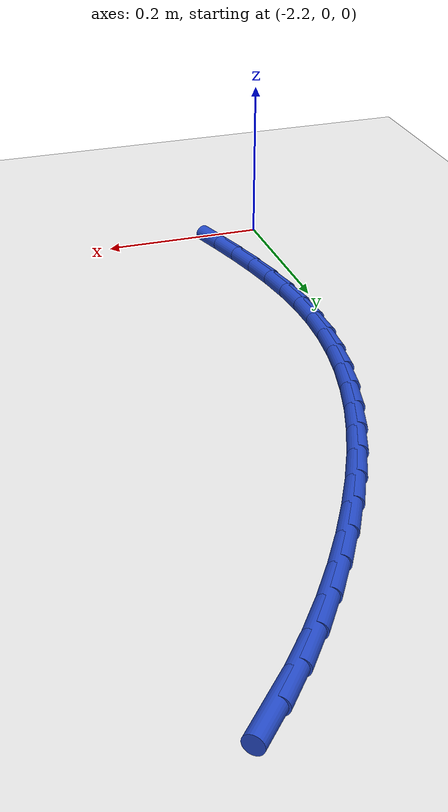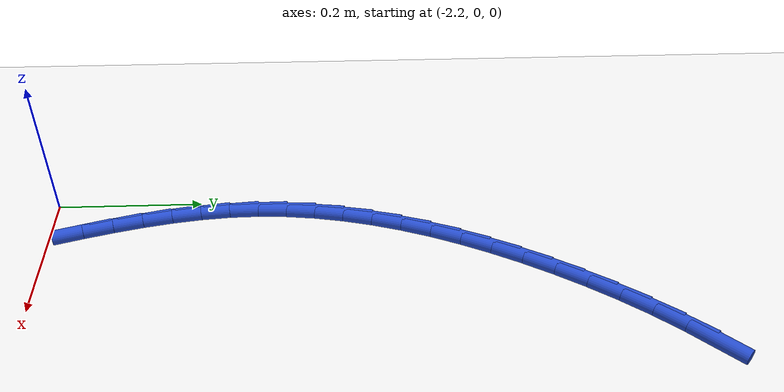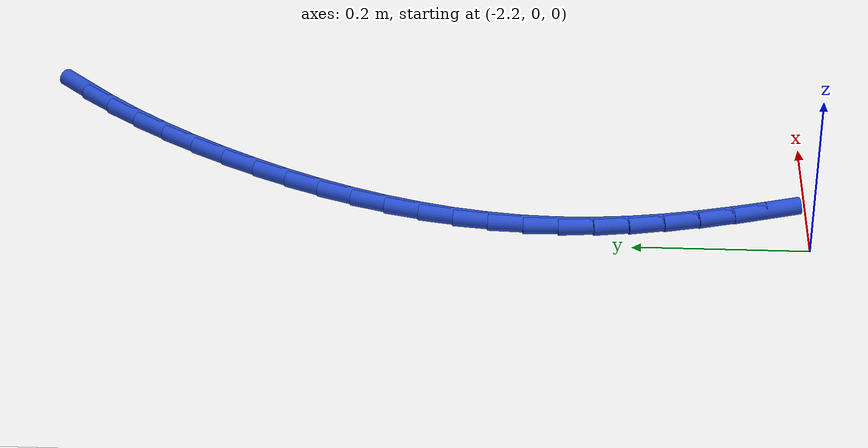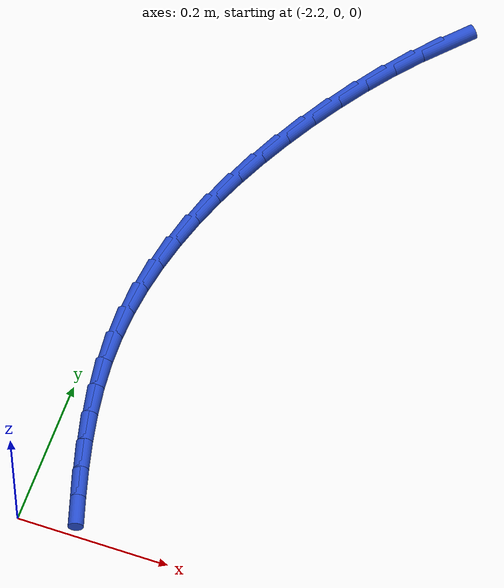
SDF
<sdf version="1.6">
 <world name="default">
  <model name="ground_plane">
   <static>1</static>
   <link name="link">
    <collision name="collision">
     <geometry><plane><normal>0 0 1</normal><size>100 100</size></plane></geometry>
     <surface><friction><ode><mu>100</mu><mu2>50</mu2></ode></friction></surface>
    </collision>
    <visual name="visual">
     <cast_shadows>0</cast_shadows>
     <geometry><plane><normal>0 0 1</normal><size>100 100</size></plane></geometry>
     <material>
      <script><uri>file://media/materials/scripts/gazebo.material</uri><name>Gazebo/WhiteGlow</name></script>
     </material>
    </visual>
   </link>
  </model>
  <model name="line">
   <link name="link_64">
    <pose>-1.914614720115715 0.8517687706379241 0.01 0 1.57 0.8266776714309082</pose>
    <collision name="collision">
     <geometry><cylinder><radius>0.01</radius><length>0.08</length></cylinder></geometry>
    </collision>
    <visual name="visual">
     <material>
      <script><name>Gazebo/Blue</name><uri>file://media/materials/scripts/gazebo.material</uri></script>
     </material>
     <geometry><cylinder><radius>0.01</radius><length>0.08</length></cylinder></geometry>
    </visual>
   </link>
   <link name="link_65">
    <pose>-1.9444672999578119 0.8193439491082191 0.01 0 1.57 0.8808925565863249</pose>
    <collision name="collision">
     <geometry><cylinder><radius>0.01</radius><length>0.08</length></cylinder></geometry>
    </collision>
    <visual name="visual">
     <material>
      <script><name>Gazebo/Blue</name><uri>file://media/materials/scripts/gazebo.material</uri></script>
     </material>
     <geometry><cylinder><radius>0.01</radius><length>0.08</length></cylinder></geometry>
    </visual>
   </link>
   <link name="link_66">
    <pose>-1.9728456533976435 0.7849532123702778 0.01 0 1.57 0.929612253341343</pose>
    <collision name="collision">
     <geometry><cylinder><radius>0.01</radius><length>0.08</length></cylinder></geometry>
    </collision>
    <visual name="visual">
     <material>
      <script><name>Gazebo/Blue</name><uri>file://media/materials/scripts/gazebo.material</uri></script>
     </material>
     <geometry><cylinder><radius>0.01</radius><length>0.08</length></cylinder></geometry>
    </visual>
   </link>
   <link name="link_67">
    <pose>-1.9996943912351357 0.7489815553349181 0.01 0 1.57 0.9738077752511692</pose>
    <collision name="collision">
     <geometry><cylinder><radius>0.01</radius><length>0.08</length></cylinder></geometry>
    </collision>
    <visual name="visual">
     <material>
      <script><name>Gazebo/Blue</name><uri>file://media/materials/scripts/gazebo.material</uri></script>
     </material>
     <geometry><cylinder><radius>0.01</radius><length>0.08</length></cylinder></geometry>
    </visual>
   </link>
   <link name="link_68">
    <pose>-2.024958124270215 0.7118139729129569 0.01 0 1.57 1.0143438582423232</pose>
    <collision name="collision">
     <geometry><cylinder><radius>0.01</radius><length>0.08</length></cylinder></geometry>
    </collision>
    <visual name="visual">
     <material>
      <script><name>Gazebo/Blue</name><uri>file://media/materials/scripts/gazebo.material</uri></script>
     </material>
     <geometry><cylinder><radius>0.01</radius><length>0.08</length></cylinder></geometry>
    </visual>
   </link>
   <link name="link_69">
    <pose>-2.0485814633028077 0.6738354600152128 0.01 0 1.57 1.0521744910434263</pose>
    <collision name="collision">
     <geometry><cylinder><radius>0.01</radius><length>0.08</length></cylinder></geometry>
    </collision>
    <visual name="visual">
     <material>
      <script><name>Gazebo/Blue</name><uri>file://media/materials/scripts/gazebo.material</uri></script>
     </material>
     <geometry><cylinder><radius>0.01</radius><length>0.08</length></cylinder></geometry>
    </visual>
   </link>
   <link name="link_70">
    <pose>-2.0705071193459297 0.6354188200036454 0.01 0 1.57 1.0906015369011544</pose>
    <collision name="collision">
     <geometry><cylinder><radius>0.01</radius><length>0.08</length></cylinder></geometry>
    </collision>
    <visual name="visual">
     <material>
      <script><name>Gazebo/Blue</name><uri>file://media/materials/scripts/gazebo.material</uri></script>
     </material>
     <geometry><cylinder><radius>0.01</radius><length>0.08</length></cylinder></geometry>
    </visual>
   </link>
   <link name="link_71">
    <pose>-2.09064855127912 0.5967491358108904 0.01 0 1.57 1.1320293997683217</pose>
    <collision name="collision">
     <geometry><cylinder><radius>0.01</radius><length>0.08</length></cylinder></geometry>
    </collision>
    <visual name="visual">
     <material>
      <script><name>Gazebo/Blue</name><uri>file://media/materials/scripts/gazebo.material</uri></script>
     </material>
     <geometry><cylinder><radius>0.01</radius><length>0.08</length></cylinder></geometry>
    </visual>
   </link>
   <link name="link_72">
    <pose>-2.1088962697177145 0.5578642239142902 0.01 0 1.57 1.1767407733456</pose>
    <collision name="collision">
     <geometry><cylinder><radius>0.01</radius><length>0.08</length></cylinder></geometry>
    </collision>
    <visual name="visual">
     <material>
      <script><name>Gazebo/Blue</name><uri>file://media/materials/scripts/gazebo.material</uri></script>
     </material>
     <geometry><cylinder><radius>0.01</radius><length>0.08</length></cylinder></geometry>
    </visual>
   </link>
   <link name="link_73">
    <pose>-2.125140169591737 0.5187979497387637 0.01 0 1.57 1.2249468748099253</pose>
    <collision name="collision">
     <geometry><cylinder><radius>0.01</radius><length>0.08</length></cylinder></geometry>
    </collision>
    <visual name="visual">
     <material>
      <script><name>Gazebo/Blue</name><uri>file://media/materials/scripts/gazebo.material</uri></script>
     </material>
     <geometry><cylinder><radius>0.01</radius><length>0.08</length></cylinder></geometry>
    </visual>
   </link>
   <link name="link_74">
    <pose>-2.1392701458312042 0.4795841787092292 0.01 0 1.57 1.2768283758326175</pose>
    <collision name="collision">
     <geometry><cylinder><radius>0.01</radius><length>0.08</length></cylinder></geometry>
    </collision>
    <visual name="visual">
     <material>
      <script><name>Gazebo/Blue</name><uri>file://media/materials/scripts/gazebo.material</uri></script>
     </material>
     <geometry><cylinder><radius>0.01</radius><length>0.08</length></cylinder></geometry>
    </visual>
   </link>
   <link name="link_75">
    <pose>-2.1511760933661352 0.44025677625060633 0.01 0 1.57 1.332515590748334</pose>
    <collision name="collision">
     <geometry><cylinder><radius>0.01</radius><length>0.08</length></cylinder></geometry>
    </collision>
    <visual name="visual">
     <material>
      <script><name>Gazebo/Blue</name><uri>file://media/materials/scripts/gazebo.material</uri></script>
     </material>
     <geometry><cylinder><radius>0.01</radius><length>0.08</length></cylinder></geometry>
    </visual>
   </link>
   <link name="link_76">
    <pose>-2.16074790712655 0.4008496077878136 0.01 0 1.57 1.3920645810216832</pose>
    <collision name="collision">
     <geometry><cylinder><radius>0.01</radius><length>0.08</length></cylinder></geometry>
    </collision>
    <visual name="visual">
     <material>
      <script><name>Gazebo/Blue</name><uri>file://media/materials/scripts/gazebo.material</uri></script>
     </material>
     <geometry><cylinder><radius>0.01</radius><length>0.08</length></cylinder></geometry>
    </visual>
   </link>
   <link name="link_77">
    <pose>-2.1678754820424677 0.3613965387457695 0.01 0 1.57 1.455430504855217</pose>
    <collision name="collision">
     <geometry><cylinder><radius>0.01</radius><length>0.08</length></cylinder></geometry>
    </collision>
    <visual name="visual">
     <material>
      <script><name>Gazebo/Blue</name><uri>file://media/materials/scripts/gazebo.material</uri></script>
     </material>
     <geometry><cylinder><radius>0.01</radius><length>0.08</length></cylinder></geometry>
    </visual>
   </link>
   <link name="link_78">
    <pose>-2.1724487130439067 0.3219314345493935 0.01 0 1.57 1.5224409580854117</pose>
    <collision name="collision">
     <geometry><cylinder><radius>0.01</radius><length>0.08</length></cylinder></geometry>
    </collision>
    <visual name="visual">
     <material>
      <script><name>Gazebo/Blue</name><uri>file://media/materials/scripts/gazebo.material</uri></script>
     </material>
     <geometry><cylinder><radius>0.01</radius><length>0.08</length></cylinder></geometry>
    </visual>
   </link>
   <link name="link_79">
    <pose>-2.174357495060886 0.28248816062360377 0.01 0 1.57 -1.5491895214473776</pose>
    <collision name="collision">
     <geometry><cylinder><radius>0.01</radius><length>0.08</length></cylinder></geometry>
    </collision>
    <visual name="visual">
     <material>
      <script><name>Gazebo/Blue</name><uri>file://media/materials/scripts/gazebo.material</uri></script>
     </material>
     <geometry><cylinder><radius>0.01</radius><length>0.08</length></cylinder></geometry>
    </visual>
   </link>
   <link name="link_80">
    <pose>-2.1735062755265266 0.2430983919162099 0.01 0 1.57 -1.482722858988238</pose>
    <collision name="collision">
     <geometry><cylinder><radius>0.01</radius><length>0.08</length></cylinder></geometry>
    </collision>
    <visual name="visual">
     <material>
      <script><name>Gazebo/Blue</name><uri>file://media/materials/scripts/gazebo.material</uri></script>
     </material>
     <geometry><cylinder><radius>0.01</radius><length>0.08</length></cylinder></geometry>
    </visual>
   </link>
   <link name="link_81">
    <pose>-2.170032508559958 0.203758730658761 0.01 0 1.57 -1.4250622208657993</pose>
    <collision name="collision">
     <geometry><cylinder><radius>0.01</radius><length>0.08</length></cylinder></geometry>
    </collision>
    <visual name="visual">
     <material>
      <script><name>Gazebo/Blue</name><uri>file://media/materials/scripts/gazebo.material</uri></script>
     </material>
     <geometry><cylinder><radius>0.01</radius><length>0.08</length></cylinder></geometry>
    </visual>
   </link>
   <link name="link_82">
    <pose>-2.1642611560540788 0.16443755497019016 0.01 0 1.57 -1.3765405630836445</pose>
    <collision name="collision">
     <geometry><cylinder><radius>0.01</radius><length>0.08</length></cylinder></geometry>
    </collision>
    <visual name="visual">
     <material>
      <script><name>Gazebo/Blue</name><uri>file://media/materials/scripts/gazebo.material</uri></script>
     </material>
     <geometry><cylinder><radius>0.01</radius><length>0.08</length></cylinder></geometry>
    </visual>
   </link>
   <link name="link_83">
    <pose>-2.1565224977799216 0.12510244250986563 0.01 0 1.57 -1.3370737299560842</pose>
    <collision name="collision">
     <geometry><cylinder><radius>0.01</radius><length>0.08</length></cylinder></geometry>
    </collision>
    <visual name="visual">
     <material>
      <script><name>Gazebo/Blue</name><uri>file://media/materials/scripts/gazebo.material</uri></script>
     </material>
     <geometry><cylinder><radius>0.01</radius><length>0.08</length></cylinder></geometry>
    </visual>
   </link>
   <link name="link_84">
    <pose>-2.147146813508521 0.08572097093715417 0.01 0 1.57 -1.3064194196465648</pose>
    <collision name="collision">
     <geometry><cylinder><radius>0.01</radius><length>0.08</length></cylinder></geometry>
    </collision>
    <visual name="visual">
     <material>
      <script><name>Gazebo/Blue</name><uri>file://media/materials/scripts/gazebo.material</uri></script>
     </material>
     <geometry><cylinder><radius>0.01</radius><length>0.08</length></cylinder></geometry>
    </visual>
   </link>
   <link name="link_85">
    <pose>-2.136464383010908 0.04626071791142376 0.01 0 1.57 -1.2842743519416115</pose>
    <collision name="collision">
     <geometry><cylinder><radius>0.01</radius><length>0.08</length></cylinder></geometry>
    </collision>
    <visual name="visual">
     <material>
      <script><name>Gazebo/Blue</name><uri>file://media/materials/scripts/gazebo.material</uri></script>
     </material>
     <geometry><cylinder><radius>0.01</radius><length>0.08</length></cylinder></geometry>
    </visual>
   </link>
  </model>
 </world>
</sdf>
